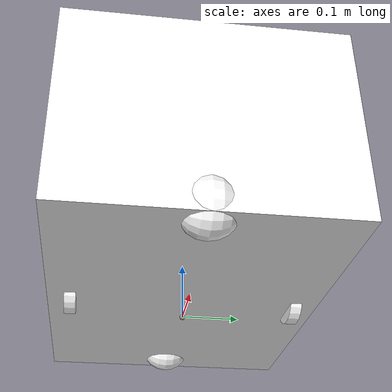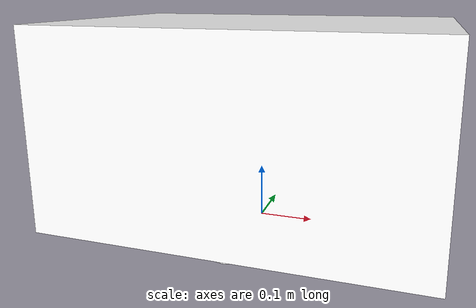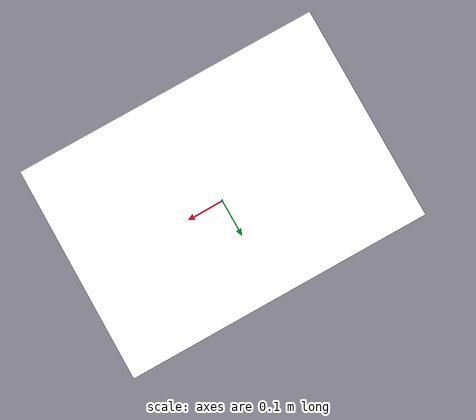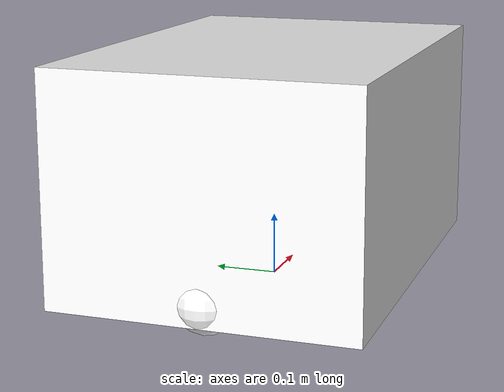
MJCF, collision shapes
<mujoco model="LD60">
    <compiler angle="radian" meshdir="../assets" autolimits="true"/>

    <option timestep="0.001" integrator="implicitfast"/>

    <default>
        <default class="LD60">
            <default class="visual">
                <geom type="mesh" contype="0" conaffinity="0" group="2"/>
            </default>
            <default class="collision">
                <geom type="mesh" group="3"/>
            </default>
        </default>
    </default>

    <asset>
        <material class="LD60" name="white" rgba="1 1 1 1"/>
        <mesh file="omron.stl"/>
    </asset>

    <worldbody>
        <light name="top" pos="0 0 2" mode="trackcom"/>

        <body name="LD60" pos="0 0 0.0">
            <inertial pos="0 0 0" mass="5" diaginertia="1 1 1"/>
            <freejoint name="free_joint"/>
            <site name="local_forward" pos="0 0 0"/>
            <geom mesh="omron" material="white" class="visual"/>
            <geom type="box" pos="0 0 0.20" size="0.34 0.24 0.18" rgba="1 1 1 0.5" class="collision" />

            <body name="left_wheel" pos="0.0 0.2 0.05" quat="1 -1 0 0">
                <joint name="left_wheel_joint" type="hinge" pos="0 0 0" axis="0 0 1" />
                <geom type="cylinder" size="0.05 0.01" rgba="1 1 1 1" class="collision" />
            </body>

            <body name="right_wheel" pos="0.0 -0.2 0.05" quat="1 -1 0 0">
                <joint name="right_wheel_joint" type="hinge" pos="0 0 0" axis="0 0 1" />
                <geom type="cylinder" size="0.05 0.01" rgba="1 1 1 1" class="collision" />
            </body>

            <body name="front_wheel" pos="0.3 0.0 0.05" quat="1 -1 0 0">
                <joint name="front_wheel_joint" type="ball" pos="0 0 0" />
                <geom type="sphere" size="0.05" rgba="1 1 1 1" class="collision" />
            </body>

            <body name="back_wheel" pos="-0.3 0.0 0.05" quat="1 -1 0 0">
                <joint name="back_wheel_joint" type="ball" pos="0 0 0" />
                <geom type="sphere" size="0.05" rgba="1 1 1 1" class="collision" />
            </body>
        </body>

    </worldbody>

    <actuator>
        <velocity name="left_wheel_actuator" joint="left_wheel_joint" kv="1" ctrlrange="-1.8 1.8" />
        <velocity name="right_wheel_actuator_" joint="right_wheel_joint" kv="1" ctrlrange="-1.8 1.8" />
    </actuator>

</mujoco>
